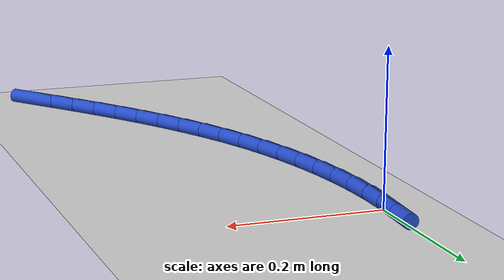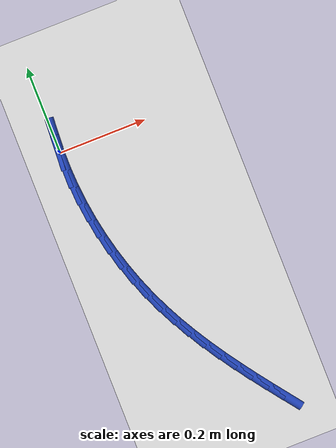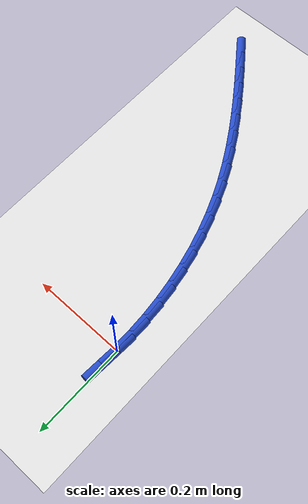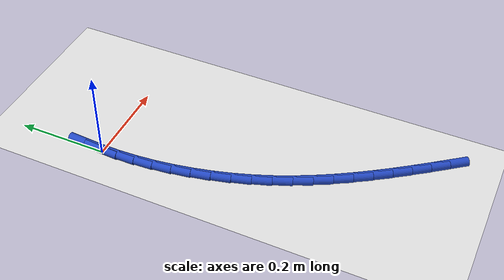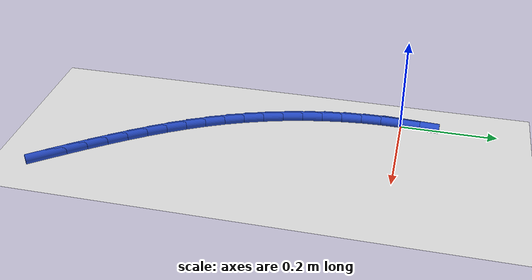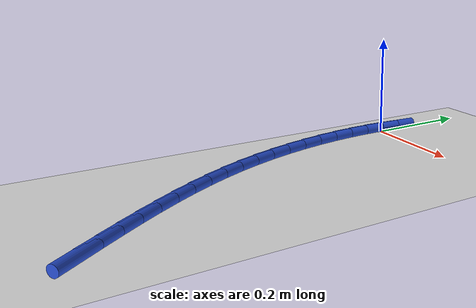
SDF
<sdf version="1.6">
 <world name="default">
  <model name="ground_plane">
   <static>1</static>
   <link name="link">
    <collision name="collision">
     <geometry><plane><normal>0 0 1</normal><size>100 100</size></plane></geometry>
     <surface><friction><ode><mu>100</mu><mu2>50</mu2></ode></friction></surface>
    </collision>
    <visual name="visual">
     <cast_shadows>0</cast_shadows>
     <geometry><plane><normal>0 0 1</normal><size>100 100</size></plane></geometry>
     <material>
      <script><uri>file://media/materials/scripts/gazebo.material</uri><name>Gazebo/WhiteGlow</name></script>
     </material>
    </visual>
   </link>
  </model>
  <model name="line">
   <link name="link_0">
    <pose>3.469446951953614e-18 -2.0816681711721685e-17 0.01 0 1.57 1.513567746560859</pose>
    <collision name="collision">
     <geometry><cylinder><radius>0.01</radius><length>0.08</length></cylinder></geometry>
    </collision>
    <visual name="visual">
     <material>
      <script><name>Gazebo/Blue</name><uri>file://media/materials/scripts/gazebo.material</uri></script>
     </material>
     <geometry><cylinder><radius>0.01</radius><length>0.08</length></cylinder></geometry>
    </visual>
   </link>
   <link name="link_152">
    <pose>0.2679515095983641 -0.6828298907575241 0.01 0 1.57 -0.9226384334691483</pose>
    <collision name="collision">
     <geometry><cylinder><radius>0.01</radius><length>0.08</length></cylinder></geometry>
    </collision>
    <visual name="visual">
     <material>
      <script><name>Gazebo/Blue</name><uri>file://media/materials/scripts/gazebo.material</uri></script>
     </material>
     <geometry><cylinder><radius>0.01</radius><length>0.08</length></cylinder></geometry>
    </visual>
   </link>
   <link name="link_153">
    <pose>0.24258445470362336 -0.6493332642602831 0.01 0 1.57 -0.9334243338431183</pose>
    <collision name="collision">
     <geometry><cylinder><radius>0.01</radius><length>0.08</length></cylinder></geometry>
    </collision>
    <visual name="visual">
     <material>
      <script><name>Gazebo/Blue</name><uri>file://media/materials/scripts/gazebo.material</uri></script>
     </material>
     <geometry><cylinder><radius>0.01</radius><length>0.08</length></cylinder></geometry>
    </visual>
   </link>
   <link name="link_154">
    <pose>0.21766918932312526 -0.6156852194973896 0.01 0 1.57 -0.9490352183699059</pose>
    <collision name="collision">
     <geometry><cylinder><radius>0.01</radius><length>0.08</length></cylinder></geometry>
    </collision>
    <visual name="visual">
     <material>
      <script><name>Gazebo/Blue</name><uri>file://media/materials/scripts/gazebo.material</uri></script>
     </material>
     <geometry><cylinder><radius>0.01</radius><length>0.08</length></cylinder></geometry>
    </visual>
   </link>
   <link name="link_155">
    <pose>0.19336961511849152 -0.5817743121592369 0.01 0 1.57 -0.9695557367887622</pose>
    <collision name="collision">
     <geometry><cylinder><radius>0.01</radius><length>0.08</length></cylinder></geometry>
    </collision>
    <visual name="visual">
     <material>
      <script><name>Gazebo/Blue</name><uri>file://media/materials/scripts/gazebo.material</uri></script>
     </material>
     <geometry><cylinder><radius>0.01</radius><length>0.08</length></cylinder></geometry>
    </visual>
   </link>
   <link name="link_156">
    <pose>0.16985059470305347 -0.5474880064472123 0.01 0 1.57 -0.9950207757286044</pose>
    <collision name="collision">
     <geometry><cylinder><radius>0.01</radius><length>0.08</length></cylinder></geometry>
    </collision>
    <visual name="visual">
     <material>
      <script><name>Gazebo/Blue</name><uri>file://media/materials/scripts/gazebo.material</uri></script>
     </material>
     <geometry><cylinder><radius>0.01</radius><length>0.08</length></cylinder></geometry>
    </visual>
   </link>
   <link name="link_157">
    <pose>0.1472769906901425 -0.512713766562703 0.01 0 1.57 -1.02543415766808</pose>
    <collision name="collision">
     <geometry><cylinder><radius>0.01</radius><length>0.08</length></cylinder></geometry>
    </collision>
    <visual name="visual">
     <material>
      <script><name>Gazebo/Blue</name><uri>file://media/materials/scripts/gazebo.material</uri></script>
     </material>
     <geometry><cylinder><radius>0.01</radius><length>0.08</length></cylinder></geometry>
    </visual>
   </link>
   <link name="link_158">
    <pose>0.12581366569308952 -0.477339056707096 0.01 0 1.57 -1.0607497861015132</pose>
    <collision name="collision">
     <geometry><cylinder><radius>0.01</radius><length>0.08</length></cylinder></geometry>
    </collision>
    <visual name="visual">
     <material>
      <script><name>Gazebo/Blue</name><uri>file://media/materials/scripts/gazebo.material</uri></script>
     </material>
     <geometry><cylinder><radius>0.01</radius><length>0.08</length></cylinder></geometry>
    </visual>
   </link>
   <link name="link_159">
    <pose>0.10562548232522674 -0.4412513410817795 0.01 0 1.57 -1.1008500920699569</pose>
    <collision name="collision">
     <geometry><cylinder><radius>0.01</radius><length>0.08</length></cylinder></geometry>
    </collision>
    <visual name="visual">
     <material>
      <script><name>Gazebo/Blue</name><uri>file://media/materials/scripts/gazebo.material</uri></script>
     </material>
     <geometry><cylinder><radius>0.01</radius><length>0.08</length></cylinder></geometry>
    </visual>
   </link>
   <link name="link_160">
    <pose>0.0868773031998851 -0.4043380838881407 0.01 0 1.57 -1.1455236690333648</pose>
    <collision name="collision">
     <geometry><cylinder><radius>0.01</radius><length>0.08</length></cylinder></geometry>
    </collision>
    <visual name="visual">
     <material>
      <script><name>Gazebo/Blue</name><uri>file://media/materials/scripts/gazebo.material</uri></script>
     </material>
     <geometry><cylinder><radius>0.01</radius><length>0.08</length></cylinder></geometry>
    </visual>
   </link>
   <link name="link_161">
    <pose>0.06973399093039594 -0.36648674932756675 0.01 0 1.57 -1.1938551158174306</pose>
    <collision name="collision">
     <geometry><cylinder><radius>0.01</radius><length>0.08</length></cylinder></geometry>
    </collision>
    <visual name="visual">
     <material>
      <script><name>Gazebo/Blue</name><uri>file://media/materials/scripts/gazebo.material</uri></script>
     </material>
     <geometry><cylinder><radius>0.01</radius><length>0.08</length></cylinder></geometry>
    </visual>
   </link>
   <link name="link_162">
    <pose>0.05434666224409992 -0.3276171258653403 0.01 0 1.57 -1.2421400884697327</pose>
    <collision name="collision">
     <geometry><cylinder><radius>0.01</radius><length>0.08</length></cylinder></geometry>
    </collision>
    <visual name="visual">
     <material>
      <script><name>Gazebo/Blue</name><uri>file://media/materials/scripts/gazebo.material</uri></script>
     </material>
     <geometry><cylinder><radius>0.01</radius><length>0.08</length></cylinder></geometry>
    </visual>
   </link>
   <link name="link_163">
    <pose>0.04078326412878409 -0.287844580528304 0.01 0 1.57 -1.2894178090445838</pose>
    <collision name="collision">
     <geometry><cylinder><radius>0.01</radius><length>0.08</length></cylinder></geometry>
    </collision>
    <visual name="visual">
     <material>
      <script><name>Gazebo/Blue</name><uri>file://media/materials/scripts/gazebo.material</uri></script>
     </material>
     <geometry><cylinder><radius>0.01</radius><length>0.08</length></cylinder></geometry>
    </visual>
   </link>
   <link name="link_164">
    <pose>0.02908062403879236 -0.24735765976673332 0.01 0 1.57 -1.3361257762922965</pose>
    <collision name="collision">
     <geometry><cylinder><radius>0.01</radius><length>0.08</length></cylinder></geometry>
    </collision>
    <visual name="visual">
     <material>
      <script><name>Gazebo/Blue</name><uri>file://media/materials/scripts/gazebo.material</uri></script>
     </material>
     <geometry><cylinder><radius>0.01</radius><length>0.08</length></cylinder></geometry>
    </visual>
   </link>
   <link name="link_165">
    <pose>0.019275515152148728 -0.20634503766487652 0.01 0 1.57 -1.3826989597550394</pose>
    <collision name="collision">
     <geometry><cylinder><radius>0.01</radius><length>0.08</length></cylinder></geometry>
    </collision>
    <visual name="visual">
     <material>
      <script><name>Gazebo/Blue</name><uri>file://media/materials/scripts/gazebo.material</uri></script>
     </material>
     <geometry><cylinder><radius>0.01</radius><length>0.08</length></cylinder></geometry>
    </visual>
   </link>
   <link name="link_166">
    <pose>0.01140471064687739 -0.16499538830698193 0.01 0 1.57 -1.4295737779044815</pose>
    <collision name="collision">
     <geometry><cylinder><radius>0.01</radius><length>0.08</length></cylinder></geometry>
    </collision>
    <visual name="visual">
     <material>
      <script><name>Gazebo/Blue</name><uri>file://media/materials/scripts/gazebo.material</uri></script>
     </material>
     <geometry><cylinder><radius>0.01</radius><length>0.08</length></cylinder></geometry>
    </visual>
   </link>
   <link name="link_167">
    <pose>0.0055049837010026055 -0.12349738577729841 0.01 0 1.57 -1.4771947670794143</pose>
    <collision name="collision">
     <geometry><cylinder><radius>0.01</radius><length>0.08</length></cylinder></geometry>
    </collision>
    <visual name="visual">
     <material>
      <script><name>Gazebo/Blue</name><uri>file://media/materials/scripts/gazebo.material</uri></script>
     </material>
     <geometry><cylinder><radius>0.01</radius><length>0.08</length></cylinder></geometry>
    </visual>
   </link>
   <link name="link_168">
    <pose>0.0016131074925485548 -0.08203970416007375 0.01 0 1.57 -1.52602124862782</pose>
    <collision name="collision">
     <geometry><cylinder><radius>0.01</radius><length>0.08</length></cylinder></geometry>
    </collision>
    <visual name="visual">
     <material>
      <script><name>Gazebo/Blue</name><uri>file://media/materials/scripts/gazebo.material</uri></script>
     </material>
     <geometry><cylinder><radius>0.01</radius><length>0.08</length></cylinder></geometry>
    </visual>
   </link>
   <link name="link_169">
    <pose>-0.0002341448004603633 -0.0408110175395583 0.01 0 1.57 1.5650590958815735</pose>
    <collision name="collision">
     <geometry><cylinder><radius>0.01</radius><length>0.08</length></cylinder></geometry>
    </collision>
    <visual name="visual">
     <material>
      <script><name>Gazebo/Blue</name><uri>file://media/materials/scripts/gazebo.material</uri></script>
     </material>
     <geometry><cylinder><radius>0.01</radius><length>0.08</length></cylinder></geometry>
    </visual>
   </link>
   <link name="link_170">
    <pose>-1.0408340855860843e-17 1.3183898417423734e-16 0.01 0 1.57 1.5123544559118518</pose>
    <collision name="collision">
     <geometry><cylinder><radius>0.01</radius><length>0.08</length></cylinder></geometry>
    </collision>
    <visual name="visual">
     <material>
      <script><name>Gazebo/Blue</name><uri>file://media/materials/scripts/gazebo.material</uri></script>
     </material>
     <geometry><cylinder><radius>0.01</radius><length>0.08</length></cylinder></geometry>
    </visual>
   </link>
   <link name="link_171">
    <pose>0.0023523150719538533 0.040204674374352864 0.01 0 1.57 1.5123544559118525</pose>
    <collision name="collision">
     <geometry><cylinder><radius>0.01</radius><length>0.08</length></cylinder></geometry>
    </collision>
    <visual name="visual">
     <material>
      <script><name>Gazebo/Blue</name><uri>file://media/materials/scripts/gazebo.material</uri></script>
     </material>
     <geometry><cylinder><radius>0.01</radius><length>0.08</length></cylinder></geometry>
    </visual>
   </link>
  </model>
 </world>
</sdf>
